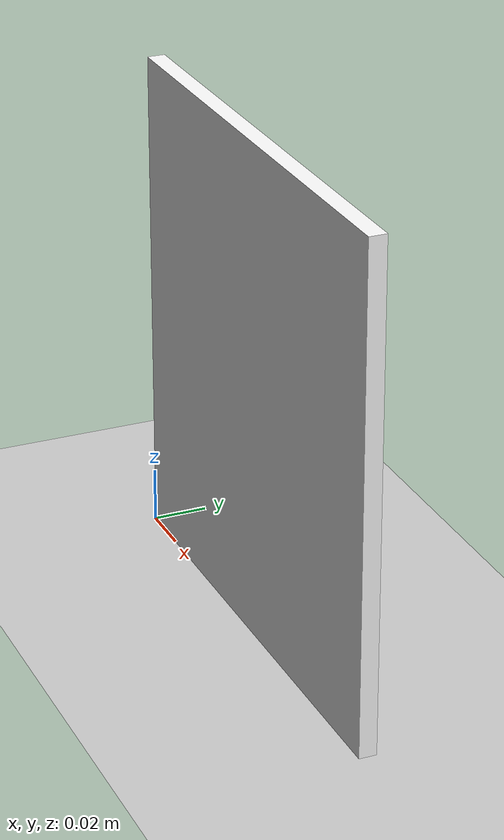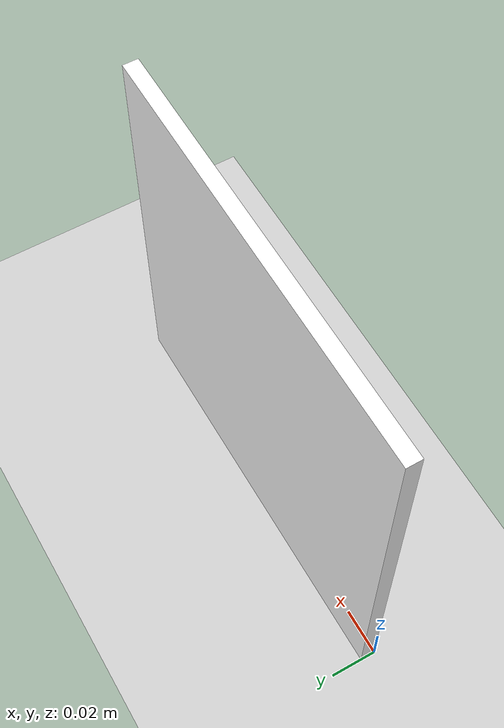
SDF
<?xml version="1.0" ?>
<sdf version="1.5">
  <world name="default">

    <!-- A global light source -->
    <include>
      <uri>model://sun</uri>
    </include>

    <!-- A ground plane -->
    <include>
      <uri>model://ground_plane</uri>
    </include>

    <!-- A washroom sign -->
    <include>
      <static>true</static>
        <pose>0 0 0 0 0 0</pose>
      <uri>model://washroom_sign</uri>
    </include>

  </world>
</sdf>

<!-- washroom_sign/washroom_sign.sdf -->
<sdf version="1.5">
  <model name="washroom_sign">
    <static>true</static>
    <link name="washroom_sign_link">
        <collision name="washroom_sign_collision">
         <geometry>
            <mesh>
                <uri>model://washroom_sign/meshes/model.dae</uri>
                <scale>0.5 0.5 0.5</scale>
            </mesh>
        </geometry>
      </collision>

      <visual name="washroom_sign_mesh">
        <cast_shadows>false</cast_shadows>
        <geometry>
            <mesh>
                <uri>model://washroom_sign/meshes/model.dae</uri>
                <scale>0.5 0.5 0.5</scale>
            </mesh>
        </geometry>
      </visual>
    </link>
  </model>
</sdf>
